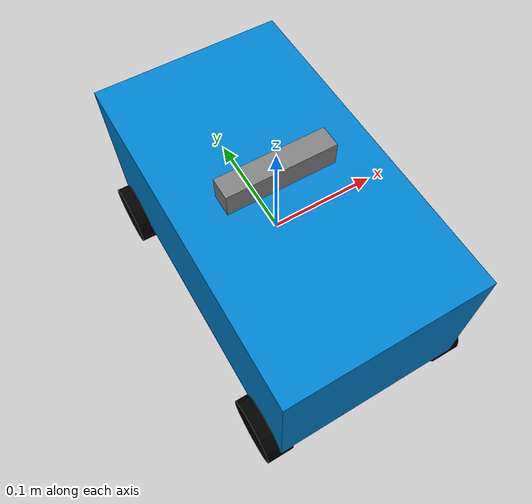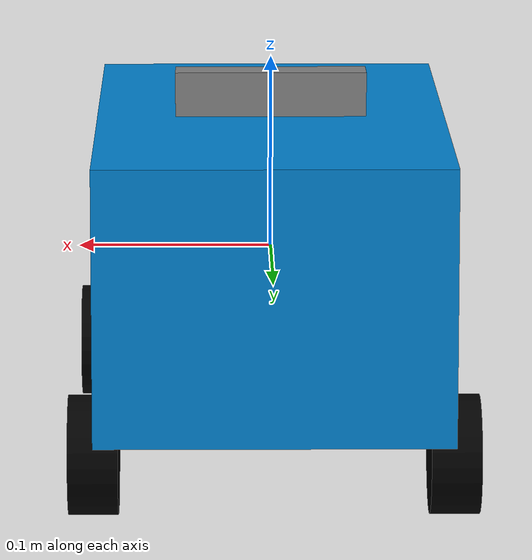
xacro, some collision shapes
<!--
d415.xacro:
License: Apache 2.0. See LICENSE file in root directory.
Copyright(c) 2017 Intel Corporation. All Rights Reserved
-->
<?xml version="1.0"?>
<robot name="racecar" xmlns:xacro="http://ros.org/wiki/xacro">
	<!-- inlcude files -->
	<include filename="$(find racecar_description)/urdf/d415.xacro" />
	<!-- constant definition -->
	<!-- wheel constants -->
	<property name="M_PI" value="3.1415926" />
	<property name="wheel_radius" value=".030" />
	<property name="wheel_length" value=".025" />
	<property name="wheel_mass" value=".020" />
	<property name="wheel_ixx" value=".000006" />
	<property name="wheel_ixy" value="0." />
	<property name="wheel_ixz" value="0." />
	<property name="wheel_iyy" value=".000006" />
	<property name="wheel_iyz" value="0." />
	<property name="wheel_izz" value=".000009" />
	<!-- body constants -->
	<property name="base_link_width" value=".32" />
	<property name="base_link_depth" value=".18" />
	<property name="base_link_height" value=".14" />
	<property name="base_link_mass" value="2.298" />
	<property name="base_link_ixx" value=".023363" />
	<property name="base_link_ixy" value="0." />
	<property name="base_link_ixz" value="0." />
	<property name="base_link_iyy" value=".009958" />
	<property name="base_link_iyz" value="0." />
	<property name="base_link_izz" value=".025814" />
	<!-- camera offsets -->
	<property name="camera_offset_x" value="0" />
	<property name="camera_offset_y" value="0" />
	<property name="camera_offset_z" value=".1" />
	<!-- macro definition -->
	<!-- wheel macro -->
	<macro name="wheel" params="prefix">
		<link name="${prefix}_wheel">
			<visual>
				<geometry>
					<cylinder length="${wheel_length}" radius="${wheel_radius}" />
				</geometry>
				<material name="black">
					<color rgba="0 0 0 1" />
				</material>
			</visual>
			<collision>
				<geometry>
					<cylinder length="${wheel_length}" radius="${wheel_radius}" />
				</geometry>
			</collision>
			<inertial>
				<mass value="${wheel_mass}" />
				<inertia ixx="${wheel_ixx}" ixy="${wheel_ixy}" ixz="${wheel_ixz}" iyy="${wheel_iyy}" iyz="${wheel_iyz}" izz="${wheel_izz}" />
			</inertial>
		</link>
	</macro>
	<!-- wheel joint macro -->
	<macro name="wheel_joint" params="prefix sign_x sign_y sign_z">
		<joint name="${prefix}_wheel_joint" type="continuous">
			<parent link="base_link" />
			<child link="${prefix}_wheel" />
			<origin rpy="0 ${M_PI/2} 0" xyz="${sign_x*0.09} ${sign_y*0.13} ${sign_z*0.08}" />
			<axis xyz="0 0 1" />
			<limit effort="10" velocity="1.0" />
			<joint_properties damping="0.0" friction="0.0" />
		</joint>
	</macro>
	<!-- camera macro -->
	<macro name="kinect_camera" params="prefix:=camera">
		<link name="${prefix}_link">
			<origin xyz="0 0 0" rpy="0 0 0" />
			<visual>
				<origin xyz="0 0 0" rpy="0 0 ${M_PI/2}" />
				<geometry>
					<mesh filename="package://racecar_description/meshes/d415.stl" />
				</geometry>
			</visual>
			<collision>
				<geometry>
					<box size="0.07 0.3 0.09" />
				</geometry>
			</collision>
		</link>
		<joint name="${prefix}_optical_joint" type="fixed">
			<origin xyz="0 0 0" rpy="-1.5708 0 -1.5708" />
			<parent link="${prefix}_link" />
			<child link="${prefix}_frame_optical" />
		</joint>
		<link name="${prefix}_frame_optical" />
	</macro>
	<!-- main -->
	<!-- racecar body -->
	<link name="base_link">
		<visual>
			<geometry>
				<box size="${base_link_width} ${base_link_depth} ${base_link_height}" />
			</geometry>
			<origin rpy="0 0 ${M_PI/2}" xyz="0 0 0" />
			<material name="orange">
				<color rgba="0 0.5 0.8 1" />
			</material>
		</visual>
		<collision>
			<geometry>
				<box size="${base_link_width} ${base_link_depth} ${base_link_height}" />
			</geometry>
			<origin rpy="0 0 ${M_PI/2}" xyz="0 0 0" />
		</collision>
		<inertial>
			<origin rpy="0 0 ${M_PI/2}" xyz="0 0 0" />
			<mass value="${base_link_mass}" />
			<inertia ixx="${base_link_ixx}" ixy="${base_link_ixy}" ixz="${base_link_ixz}" iyy="${base_link_iyy}" iyz="${base_link_iyz}" izz="${base_link_izz}" />
		</inertial>
	</link>
	<!-- four wheels and joints -->
	<wheel prefix="right_front" />
	<wheel_joint prefix="right_front" sign_x="1" sign_y="1" sign_z="-1" />
	<wheel prefix="right_back" />
	<wheel_joint prefix="right_back" sign_x="1" sign_y="-1" sign_z="-1" />
	<wheel prefix="left_front" />
	<wheel_joint prefix="left_front" sign_x="-1" sign_y="1" sign_z="-1" />
	<wheel prefix="left_back" />
	<wheel_joint prefix="left_back" sign_x="-1" sign_y="-1" sign_z="-1" />
	<!-- camera -->
	<sensor_d415 parent="base_link">
		<origin xyz="0 0 0.07" rpy="0 0 ${M_PI/2}" />
	</sensor_d415>
</robot>

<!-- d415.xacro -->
<robot name="sensor_d415" xmlns:xacro="http://ros.org/wiki/xacro">
	<macro name="sensor_d415" params="parent *origin">
		<property name="M_PI" value="3.1415926535897931" />
		<!--
		The following values are approximate, and the camera node
		publishing TF values with actual calibrated camera extrinsic values
		-->
		<property name="d415_cam_depth_to_left_ir_offset" value="0.0" />
		<property name="d415_cam_depth_to_right_ir_offset" value="-0.055" />
		<property name="d415_cam_depth_to_color_offset" value="0.015" />
		<!--
		The following values model the aluminum peripherial case for the
		d415 camera, with the camera joint represented by the actual
		peripherial camera tripod mount
		-->
		<property name="d415_cam_width" value="0.099" />
		<property name="d415_cam_height" value="0.023" />
		<property name="d415_cam_depth" value="0.02005" />
		<property name="d415_cam_mount_from_center_offset" value="0.00987" />
		<!--
		The following offset is relative the the physical d415 camera peripherial
		camera tripod mount
		-->
		<property name="d415_cam_depth_px" value="${d415_cam_mount_from_center_offset}" />
		<property name="d415_cam_depth_py" value="0.020" />
		<property name="d415_cam_depth_pz" value="${d415_cam_height/2}" />
		<material name="aluminum">
			<color rgba="0.5 0.5 0.5 1" />
		</material>
		<!-- camera body, with origin at bottom screw mount -->
		<joint name="camera_joint" type="fixed">
			<insert_block name="origin" />
			<parent link="${parent}" />
			<child link="camera_bottom_screw_frame" />
		</joint>
		<link name="camera_bottom_screw_frame" />
		<joint name="camera_link_joint" type="fixed">
			<origin xyz="0 ${d415_cam_depth_py} ${d415_cam_depth_pz}" rpy="0 0 0" />
			<parent link="camera_bottom_screw_frame" />
			<child link="camera_link" />
		</joint>
		<link name="camera_link">
			<visual>
				<origin xyz="${d415_cam_mount_from_center_offset} ${-d415_cam_depth_py} 0" rpy="${M_PI/2} 0 ${M_PI/2}" />
				<geometry>
					<mesh filename="package://racecar_description/meshes/d415.stl" />
				</geometry>
				<material name="aluminum" />
			</visual>
			<collision>
				<origin xyz="0 ${-d415_cam_depth_py} 0" rpy="0 0 0" />
				<geometry>
					<box size="${d415_cam_depth} ${d415_cam_width} ${d415_cam_height}" />
				</geometry>
			</collision>
			<inertial>
				<!-- The following are not reliable values, and should not be used for modeling -->
				<mass value="0.564" />
				<origin xyz="0 0 0" />
				<inertia ixx="0.003881243" ixy="0.0" ixz="0.0" iyy="0.000498940" iyz="0.0" izz="0.003879257" />
			</inertial>
		</link>
		<!-- camera depth joints and links -->
		<joint name="camera_depth_joint" type="fixed">
			<origin xyz="0 0 0" rpy="0 0 0" />
			<parent link="camera_link" />
			<child link="camera_depth_frame" />
		</joint>
		<link name="camera_depth_frame" />
		<joint name="camera_depth_optical_joint" type="fixed">
			<origin xyz="0 0 0" rpy="${-M_PI/2} 0 ${-M_PI/2}" />
			<parent link="camera_depth_frame" />
			<child link="camera_depth_optical_frame" />
		</joint>
		<link name="camera_depth_optical_frame" />
		<!-- camera left IR joints and links -->
		<joint name="camera_left_ir_joint" type="fixed">
			<origin xyz="0 ${d415_cam_depth_to_left_ir_offset} 0" rpy="0 0 0" />
			<parent link="camera_depth_frame" />
			<child link="camera_left_ir_frame" />
		</joint>
		<link name="camera_left_ir_frame" />
		<joint name="camera_left_ir_optical_joint" type="fixed">
			<origin xyz="0 0 0" rpy="${-M_PI/2} 0 ${-M_PI/2}" />
			<parent link="camera_left_ir_frame" />
			<child link="camera_left_ir_optical_frame" />
		</joint>
		<link name="camera_left_ir_optical_frame" />
		<!-- camera right IR joints and links -->
		<joint name="camera_right_ir_joint" type="fixed">
			<origin xyz="0 ${d415_cam_depth_to_right_ir_offset} 0" rpy="0 0 0" />
			<parent link="camera_depth_frame" />
			<child link="camera_right_ir_frame" />
		</joint>
		<link name="camera_right_ir_frame" />
		<joint name="camera_right_ir_optical_joint" type="fixed">
			<origin xyz="0 0 0" rpy="${-M_PI/2} 0 ${-M_PI/2}" />
			<parent link="camera_right_ir_frame" />
			<child link="camera_right_ir_optical_frame" />
		</joint>
		<link name="camera_right_ir_optical_frame" />
		<!-- camera color joints and links -->
		<joint name="camera_color_joint" type="fixed">
			<origin xyz="0 ${d415_cam_depth_to_color_offset} 0" rpy="0 0 0" />
			<parent link="camera_depth_frame" />
			<child link="camera_color_frame" />
		</joint>
		<link name="camera_color_frame" />
		<joint name="camera_color_optical_joint" type="fixed">
			<origin xyz="0 0 0" rpy="${-M_PI/2} 0 ${-M_PI/2}" />
			<parent link="camera_color_frame" />
			<child link="camera_color_optical_frame" />
		</joint>
		<link name="camera_color_optical_frame" />
	</macro>
</robot>
